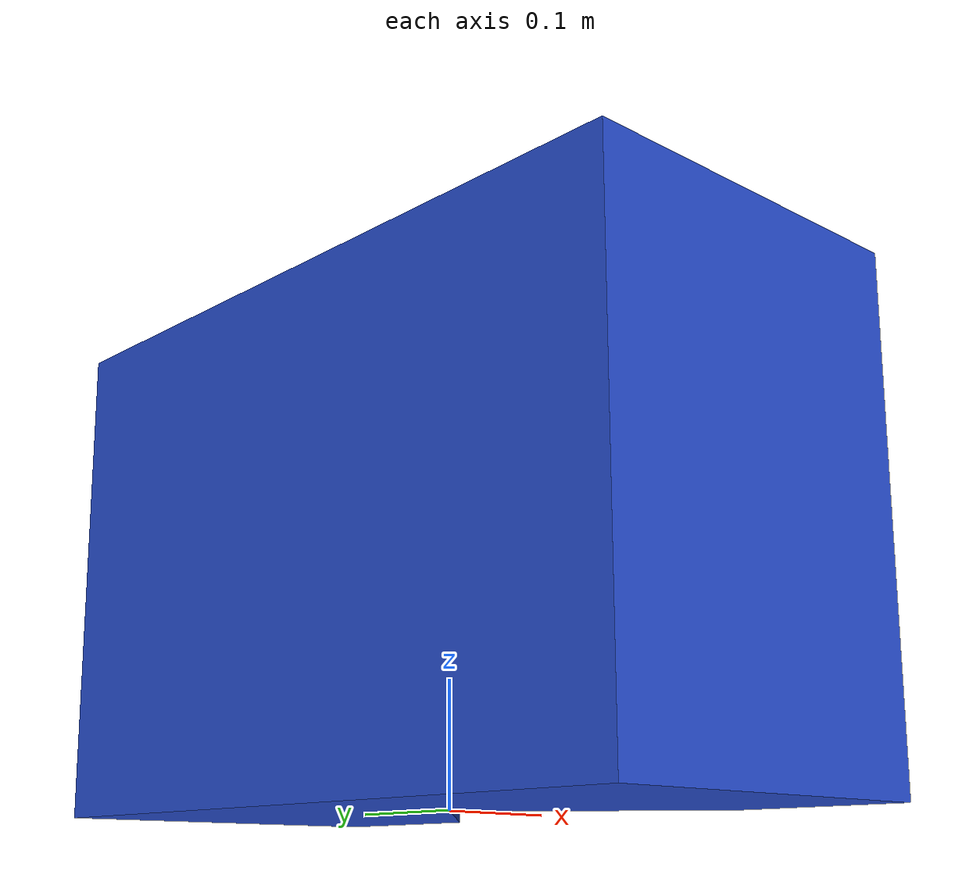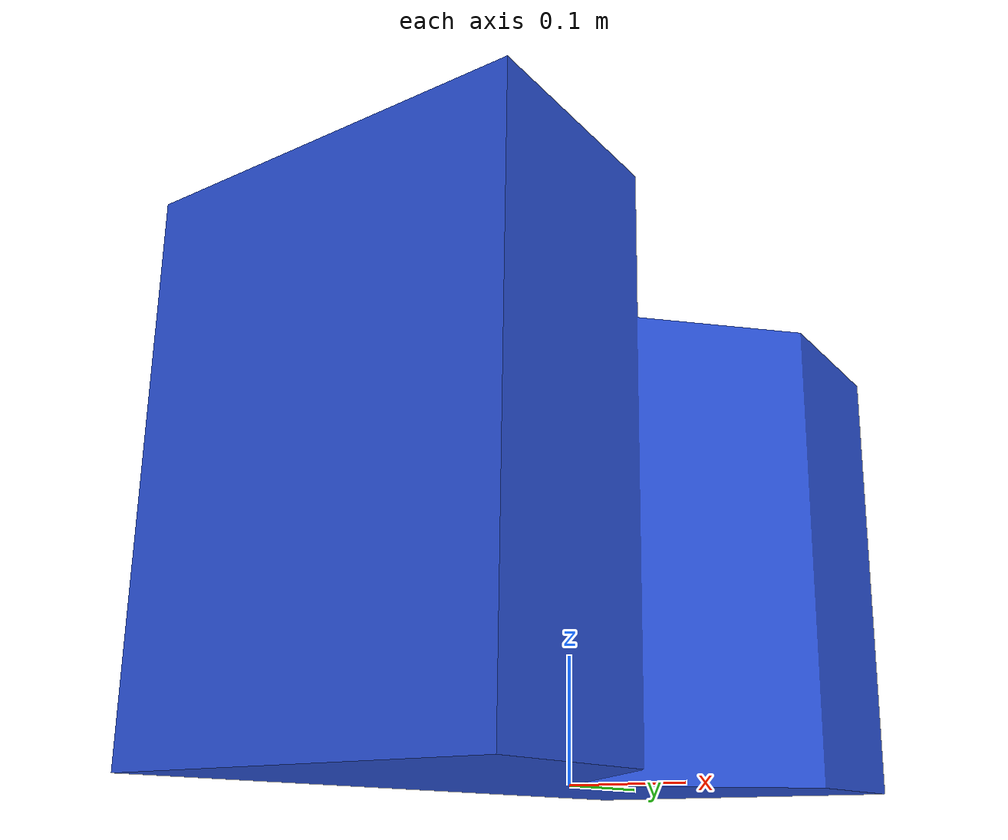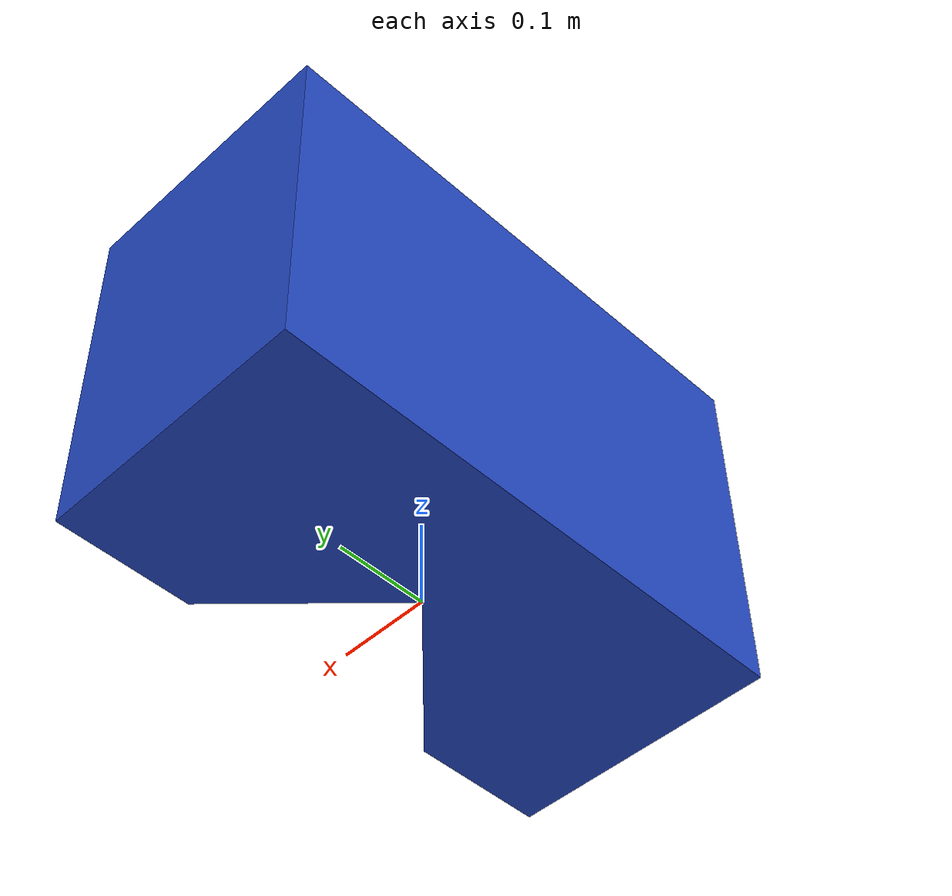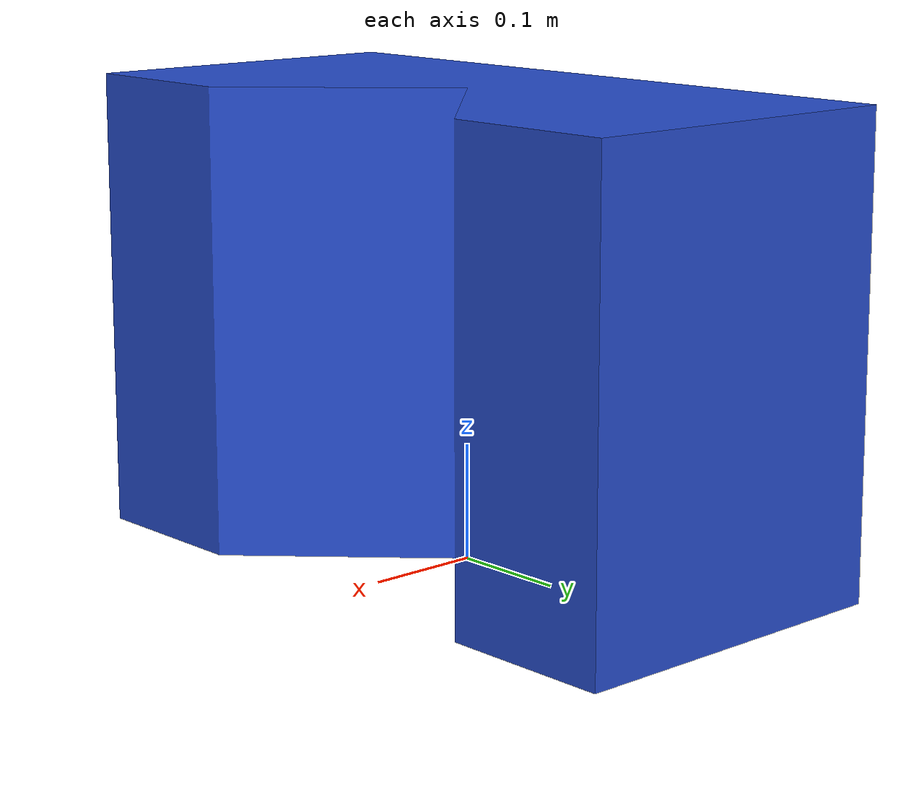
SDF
<?xml version='1.0'?>
<sdf version="1.4">
  <model name="laser_marker">
    <link name="base">
      <pose>0.15 0 0 0 0 1.5707</pose>
      <inertial>
        <mass>100.0</mass>
        <inertia>
          <ixx>33.4</ixx>
          <ixy>0.0</ixy>
          <ixz>0.0</ixz>
          <iyy>41.7</iyy>
          <iyz>0.0</iyz>
          <izz>8.42</izz>
        </inertia>
      </inertial>
      <collision name="collision">
        <geometry>
          <mesh>
            <uri>model://laser_marker/mesh/laser_marker_ros.stl</uri>
          </mesh>
        </geometry>
      </collision>
      <visual name="visual">
        <geometry>
          <mesh>
            <uri>model://laser_marker/mesh/laser_marker_ros.stl</uri>
          </mesh>
        </geometry>
        <material>
          <script>
            <uri>file://media/materials/scripts/gazebo.material</uri>
            <name>Gazebo/Blue</name>
          </script>
        </material>
      </visual>
    </link>

  </model>
</sdf>
